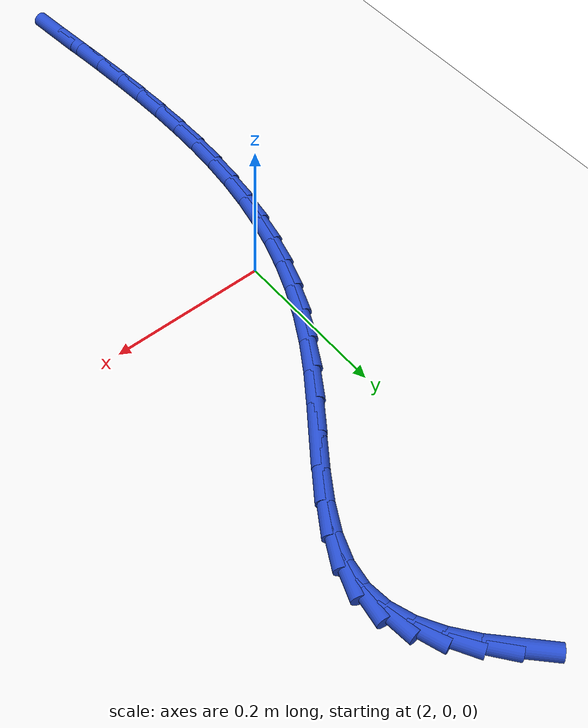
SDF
<sdf version="1.6">
 <world name="default">
  <model name="ground_plane">
   <static>1</static>
   <link name="link">
    <collision name="collision">
     <geometry><plane><normal>0 0 1</normal><size>100 100</size></plane></geometry>
     <surface><friction><ode><mu>100</mu><mu2>50</mu2></ode></friction></surface>
    </collision>
    <visual name="visual">
     <cast_shadows>0</cast_shadows>
     <geometry><plane><normal>0 0 1</normal><size>100 100</size></plane></geometry>
     <material>
      <script><uri>file://media/materials/scripts/gazebo.material</uri><name>Gazebo/WhiteGlow</name></script>
     </material>
    </visual>
   </link>
  </model>
  <model name="line">
   <link name="link_75">
    <pose>2.09837497228329 0.535496802229151 0.01 0 1.57 -0.789538815041571</pose>
    <collision name="collision">
     <geometry><cylinder><radius>0.01</radius><length>0.08</length></cylinder></geometry>
    </collision>
    <visual name="visual">
     <material>
      <script><name>Gazebo/Blue</name><uri>file://media/materials/scripts/gazebo.material</uri></script>
     </material>
     <geometry><cylinder><radius>0.01</radius><length>0.08</length></cylinder></geometry>
    </visual>
   </link>
   <link name="link_76">
    <pose>2.1252536429119253 0.5083946143927593 0.01 0 1.57 -0.8909405941485125</pose>
    <collision name="collision">
     <geometry><cylinder><radius>0.01</radius><length>0.08</length></cylinder></geometry>
    </collision>
    <visual name="visual">
     <material>
      <script><name>Gazebo/Blue</name><uri>file://media/materials/scripts/gazebo.material</uri></script>
     </material>
     <geometry><cylinder><radius>0.01</radius><length>0.08</length></cylinder></geometry>
    </visual>
   </link>
   <link name="link_77">
    <pose>2.147500903602959 0.48087527569402444 0.01 0 1.57 -1.0320507822706095</pose>
    <collision name="collision">
     <geometry><cylinder><radius>0.01</radius><length>0.08</length></cylinder></geometry>
    </collision>
    <visual name="visual">
     <material>
      <script><name>Gazebo/Blue</name><uri>file://media/materials/scripts/gazebo.material</uri></script>
     </material>
     <geometry><cylinder><radius>0.01</radius><length>0.08</length></cylinder></geometry>
    </visual>
   </link>
   <link name="link_78">
    <pose>2.164296687732033 0.45277579115737904 0.01 0 1.57 -1.220922967999859</pose>
    <collision name="collision">
     <geometry><cylinder><radius>0.01</radius><length>0.08</length></cylinder></geometry>
    </collision>
    <visual name="visual">
     <material>
      <script><name>Gazebo/Blue</name><uri>file://media/materials/scripts/gazebo.material</uri></script>
     </material>
     <geometry><cylinder><radius>0.01</radius><length>0.08</length></cylinder></geometry>
    </visual>
   </link>
   <link name="link_79">
    <pose>2.1748209286747855 0.4239331658072549 0.01 0 1.57 -1.4559170088116173</pose>
    <collision name="collision">
     <geometry><cylinder><radius>0.01</radius><length>0.08</length></cylinder></geometry>
    </collision>
    <visual name="visual">
     <material>
      <script><name>Gazebo/Blue</name><uri>file://media/materials/scripts/gazebo.material</uri></script>
     </material>
     <geometry><cylinder><radius>0.01</radius><length>0.08</length></cylinder></geometry>
    </visual>
   </link>
   <link name="link_80">
    <pose>2.1782535598068606 0.39418440466808413 0.01 0 1.57 1.428026020824698</pose>
    <collision name="collision">
     <geometry><cylinder><radius>0.01</radius><length>0.08</length></cylinder></geometry>
    </collision>
    <visual name="visual">
     <material>
      <script><name>Gazebo/Blue</name><uri>file://media/materials/scripts/gazebo.material</uri></script>
     </material>
     <geometry><cylinder><radius>0.01</radius><length>0.08</length></cylinder></geometry>
    </visual>
   </link>
   <link name="link_81">
    <pose>2.173824467132047 0.3633729666170482 0.01 0 1.57 1.2136951049178508</pose>
    <collision name="collision">
     <geometry><cylinder><radius>0.01</radius><length>0.08</length></cylinder></geometry>
    </collision>
    <visual name="visual">
     <material>
      <script><name>Gazebo/Blue</name><uri>file://media/materials/scripts/gazebo.material</uri></script>
     </material>
     <geometry><cylinder><radius>0.01</radius><length>0.08</length></cylinder></geometry>
    </visual>
   </link>
   <link name="link_82">
    <pose>2.1619301621716667 0.3314930379221056 0.01 0 1.57 1.0739356968676257</pose>
    <collision name="collision">
     <geometry><cylinder><radius>0.01</radius><length>0.08</length></cylinder></geometry>
    </collision>
    <visual name="visual">
     <material>
      <script><name>Gazebo/Blue</name><uri>file://media/materials/scripts/gazebo.material</uri></script>
     </material>
     <geometry><cylinder><radius>0.01</radius><length>0.08</length></cylinder></geometry>
    </visual>
   </link>
   <link name="link_83">
    <pose>2.144143709374434 0.29869081485801785 0.01 0 1.57 0.9895773072311492</pose>
    <collision name="collision">
     <geometry><cylinder><radius>0.01</radius><length>0.08</length></cylinder></geometry>
    </collision>
    <visual name="visual">
     <material>
      <script><name>Gazebo/Blue</name><uri>file://media/materials/scripts/gazebo.material</uri></script>
     </material>
     <geometry><cylinder><radius>0.01</radius><length>0.08</length></cylinder></geometry>
    </visual>
   </link>
   <link name="link_84">
    <pose>2.122090111343874 0.2651192040812757 0.01 0 1.57 0.9452278440826092</pose>
    <collision name="collision">
     <geometry><cylinder><radius>0.01</radius><length>0.08</length></cylinder></geometry>
    </collision>
    <visual name="visual">
     <material>
      <script><name>Gazebo/Blue</name><uri>file://media/materials/scripts/gazebo.material</uri></script>
     </material>
     <geometry><cylinder><radius>0.01</radius><length>0.08</length></cylinder></geometry>
    </visual>
   </link>
   <link name="link_85">
    <pose>2.0973943706835123 0.23093111224836876 0.01 0 1.57 0.9324098892976036</pose>
    <collision name="collision">
     <geometry><cylinder><radius>0.01</radius><length>0.08</length></cylinder></geometry>
    </collision>
    <visual name="visual">
     <material>
      <script><name>Gazebo/Blue</name><uri>file://media/materials/scripts/gazebo.material</uri></script>
     </material>
     <geometry><cylinder><radius>0.01</radius><length>0.08</length></cylinder></geometry>
    </visual>
   </link>
   <link name="link_86">
    <pose>2.0716814899968727 0.1962794460157879 0.01 0 1.57 0.9480527787753756</pose>
    <collision name="collision">
     <geometry><cylinder><radius>0.01</radius><length>0.08</length></cylinder></geometry>
    </collision>
    <visual name="visual">
     <material>
      <script><name>Gazebo/Blue</name><uri>file://media/materials/scripts/gazebo.material</uri></script>
     </material>
     <geometry><cylinder><radius>0.01</radius><length>0.08</length></cylinder></geometry>
    </visual>
   </link>
   <link name="link_87">
    <pose>2.046576471887482 0.16131711204002297 0.01 0 1.57 0.9928290754315559</pose>
    <collision name="collision">
     <geometry><cylinder><radius>0.01</radius><length>0.08</length></cylinder></geometry>
    </collision>
    <visual name="visual">
     <material>
      <script><name>Gazebo/Blue</name><uri>file://media/materials/scripts/gazebo.material</uri></script>
     </material>
     <geometry><cylinder><radius>0.01</radius><length>0.08</length></cylinder></geometry>
    </visual>
   </link>
   <link name="link_88">
    <pose>2.0236654563166483 0.1261919023298002 0.01 0 1.57 1.0548833946993843</pose>
    <collision name="collision">
     <geometry><cylinder><radius>0.01</radius><length>0.08</length></cylinder></geometry>
    </collision>
    <visual name="visual">
     <material>
      <script><name>Gazebo/Blue</name><uri>file://media/materials/scripts/gazebo.material</uri></script>
     </material>
     <geometry><cylinder><radius>0.01</radius><length>0.08</length></cylinder></geometry>
    </visual>
   </link>
   <link name="link_89">
    <pose>2.003671287397485 0.0909379919618139 0.01 0 1.57 1.1191496962762948</pose>
    <collision name="collision">
     <geometry><cylinder><radius>0.01</radius><length>0.08</length></cylinder></geometry>
    </collision>
    <visual name="visual">
     <material>
      <script><name>Gazebo/Blue</name><uri>file://media/materials/scripts/gazebo.material</uri></script>
     </material>
     <geometry><cylinder><radius>0.01</radius><length>0.08</length></cylinder></geometry>
    </visual>
   </link>
   <link name="link_90">
    <pose>1.9864701493613248 0.05547812851261999 0.01 0 1.57 1.183835163543846</pose>
    <collision name="collision">
     <geometry><cylinder><radius>0.01</radius><length>0.08</length></cylinder></geometry>
    </collision>
    <visual name="visual">
     <material>
      <script><name>Gazebo/Blue</name><uri>file://media/materials/scripts/gazebo.material</uri></script>
     </material>
     <geometry><cylinder><radius>0.01</radius><length>0.08</length></cylinder></geometry>
    </visual>
   </link>
   <link name="link_91">
    <pose>1.9719026913854854 0.019730382849364844 0.01 0 1.57 1.2477021879198615</pose>
    <collision name="collision">
     <geometry><cylinder><radius>0.01</radius><length>0.08</length></cylinder></geometry>
    </collision>
    <visual name="visual">
     <material>
      <script><name>Gazebo/Blue</name><uri>file://media/materials/scripts/gazebo.material</uri></script>
     </material>
     <geometry><cylinder><radius>0.01</radius><length>0.08</length></cylinder></geometry>
    </visual>
   </link>
   <link name="link_92">
    <pose>1.9598095626472831 -0.016387174160805915 0.01 0 1.57 1.309521658280639</pose>
    <collision name="collision">
     <geometry><cylinder><radius>0.01</radius><length>0.08</length></cylinder></geometry>
    </collision>
    <visual name="visual">
     <material>
      <script><name>Gazebo/Blue</name><uri>file://media/materials/scripts/gazebo.material</uri></script>
     </material>
     <geometry><cylinder><radius>0.01</radius><length>0.08</length></cylinder></geometry>
    </visual>
   </link>
   <link name="link_93">
    <pose>1.9500314123240372 -0.05295647165074448 0.01 0 1.57 1.3681732057706093</pose>
    <collision name="collision">
     <geometry><cylinder><radius>0.01</radius><length>0.08</length></cylinder></geometry>
    </collision>
    <visual name="visual">
     <material>
      <script><name>Gazebo/Blue</name><uri>file://media/materials/scripts/gazebo.material</uri></script>
     </material>
     <geometry><cylinder><radius>0.01</radius><length>0.08</length></cylinder></geometry>
    </visual>
   </link>
   <link name="link_94">
    <pose>1.9424088895930645 -0.09005943875330519 0.01 0 1.57 1.4227242438608807</pose>
    <collision name="collision">
     <geometry><cylinder><radius>0.01</radius><length>0.08</length></cylinder></geometry>
    </collision>
    <visual name="visual">
     <material>
      <script><name>Gazebo/Blue</name><uri>file://media/materials/scripts/gazebo.material</uri></script>
     </material>
     <geometry><cylinder><radius>0.01</radius><length>0.08</length></cylinder></geometry>
    </visual>
   </link>
   <link name="link_95">
    <pose>1.9367826436316822 -0.12777800460134167 0.01 0 1.57 1.4724755101542728</pose>
    <collision name="collision">
     <geometry><cylinder><radius>0.01</radius><length>0.08</length></cylinder></geometry>
    </collision>
    <visual name="visual">
     <material>
      <script><name>Gazebo/Blue</name><uri>file://media/materials/scripts/gazebo.material</uri></script>
     </material>
     <geometry><cylinder><radius>0.01</radius><length>0.08</length></cylinder></geometry>
    </visual>
   </link>
   <link name="link_96">
    <pose>1.932993323617208 -0.16619409832770765 0.01 0 1.57 1.5169712085353628</pose>
    <collision name="collision">
     <geometry><cylinder><radius>0.01</radius><length>0.08</length></cylinder></geometry>
    </collision>
    <visual name="visual">
     <material>
      <script><name>Gazebo/Blue</name><uri>file://media/materials/scripts/gazebo.material</uri></script>
     </material>
     <geometry><cylinder><radius>0.01</radius><length>0.08</length></cylinder></geometry>
    </visual>
   </link>
   <link name="link_97">
    <pose>1.9308815787269595 -0.2053896490652567 0.01 0 1.57 1.5559804869792029</pose>
    <collision name="collision">
     <geometry><cylinder><radius>0.01</radius><length>0.08</length></cylinder></geometry>
    </collision>
    <visual name="visual">
     <material>
      <script><name>Gazebo/Blue</name><uri>file://media/materials/scripts/gazebo.material</uri></script>
     </material>
     <geometry><cylinder><radius>0.01</radius><length>0.08</length></cylinder></geometry>
    </visual>
   </link>
   <link name="link_98">
    <pose>1.9302880581382538 -0.24544658594684327 0.01 0 1.57 -1.552131465710434</pose>
    <collision name="collision">
     <geometry><cylinder><radius>0.01</radius><length>0.08</length></cylinder></geometry>
    </collision>
    <visual name="visual">
     <material>
      <script><name>Gazebo/Blue</name><uri>file://media/materials/scripts/gazebo.material</uri></script>
     </material>
     <geometry><cylinder><radius>0.01</radius><length>0.08</length></cylinder></geometry>
    </visual>
   </link>
   <link name="link_99">
    <pose>1.9310534110284086 -0.2864468381053194 0.01 0 1.57 -1.5240759817361842</pose>
    <collision name="collision">
     <geometry><cylinder><radius>0.01</radius><length>0.08</length></cylinder></geometry>
    </collision>
    <visual name="visual">
     <material>
      <script><name>Gazebo/Blue</name><uri>file://media/materials/scripts/gazebo.material</uri></script>
     </material>
     <geometry><cylinder><radius>0.01</radius><length>0.08</length></cylinder></geometry>
    </visual>
   </link>
   <link name="link_100">
    <pose>1.9330182865747414 -0.32847233467353953 0.01 0 1.57 -1.5012388561738048</pose>
    <collision name="collision">
     <geometry><cylinder><radius>0.01</radius><length>0.08</length></cylinder></geometry>
    </collision>
    <visual name="visual">
     <material>
      <script><name>Gazebo/Blue</name><uri>file://media/materials/scripts/gazebo.material</uri></script>
     </material>
     <geometry><cylinder><radius>0.01</radius><length>0.08</length></cylinder></geometry>
    </visual>
   </link>
   <link name="link_101">
    <pose>1.9360233339545694 -0.3716050047843573 0.01 0 1.57 -1.4833459097865427</pose>
    <collision name="collision">
     <geometry><cylinder><radius>0.01</radius><length>0.08</length></cylinder></geometry>
    </collision>
    <visual name="visual">
     <material>
      <script><name>Gazebo/Blue</name><uri>file://media/materials/scripts/gazebo.material</uri></script>
     </material>
     <geometry><cylinder><radius>0.01</radius><length>0.08</length></cylinder></geometry>
    </visual>
   </link>
   <link name="link_102">
    <pose>1.939909202345211 -0.41592677757062646 0.01 0 1.57 -1.4704764393785577</pose>
    <collision name="collision">
     <geometry><cylinder><radius>0.01</radius><length>0.08</length></cylinder></geometry>
    </collision>
    <visual name="visual">
     <material>
      <script><name>Gazebo/Blue</name><uri>file://media/materials/scripts/gazebo.material</uri></script>
     </material>
     <geometry><cylinder><radius>0.01</radius><length>0.08</length></cylinder></geometry>
    </visual>
   </link>
   <link name="link_103">
    <pose>1.9444953103496398 -0.46148815930857395 0.01 0 1.57 -1.4673130678263229</pose>
    <collision name="collision">
     <geometry><cylinder><radius>0.01</radius><length>0.08</length></cylinder></geometry>
    </collision>
    <visual name="visual">
     <material>
      <script><name>Gazebo/Blue</name><uri>file://media/materials/scripts/gazebo.material</uri></script>
     </material>
     <geometry><cylinder><radius>0.01</radius><length>0.08</length></cylinder></geometry>
    </visual>
   </link>
   <link name="link_104">
    <pose>1.9493174383999248 -0.5079198503174832 0.01 0 1.57 -1.4768968272781886</pose>
    <collision name="collision">
     <geometry><cylinder><radius>0.01</radius><length>0.08</length></cylinder></geometry>
    </collision>
    <visual name="visual">
     <material>
      <script><name>Gazebo/Blue</name><uri>file://media/materials/scripts/gazebo.material</uri></script>
     </material>
     <geometry><cylinder><radius>0.01</radius><length>0.08</length></cylinder></geometry>
    </visual>
   </link>
  </model>
 </world>
</sdf>
